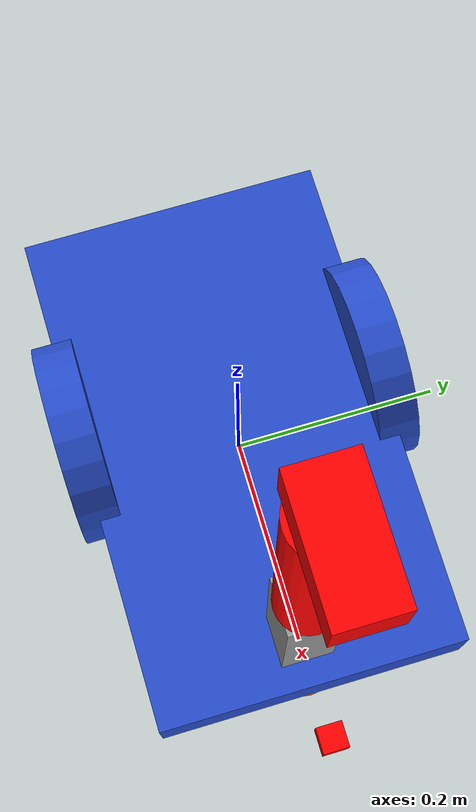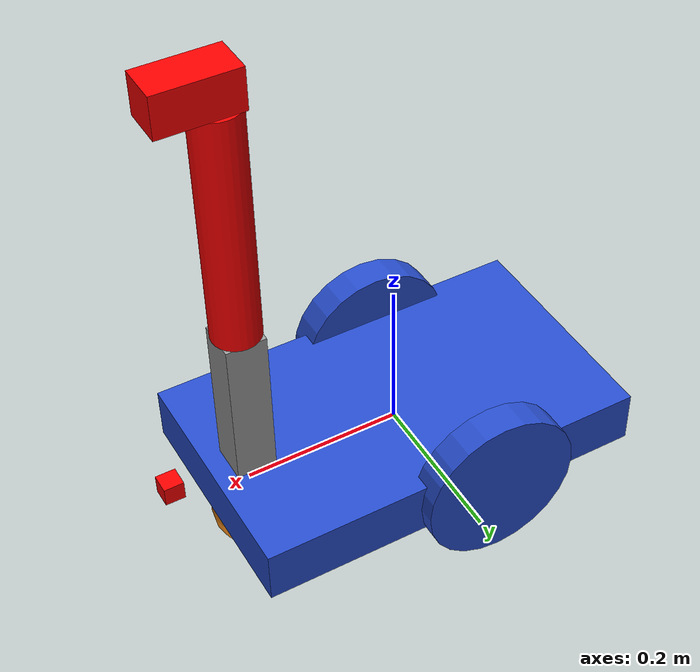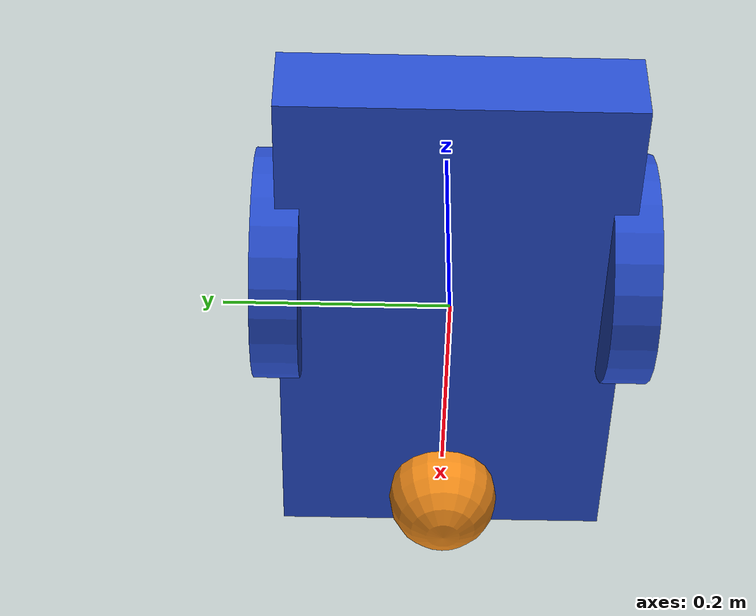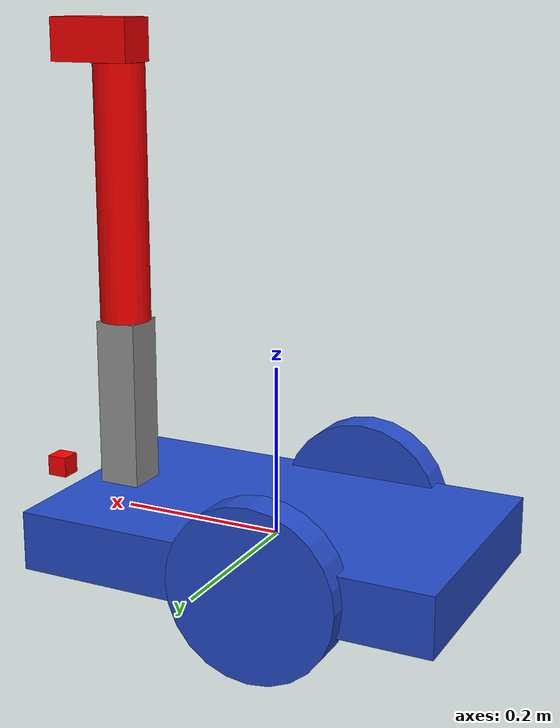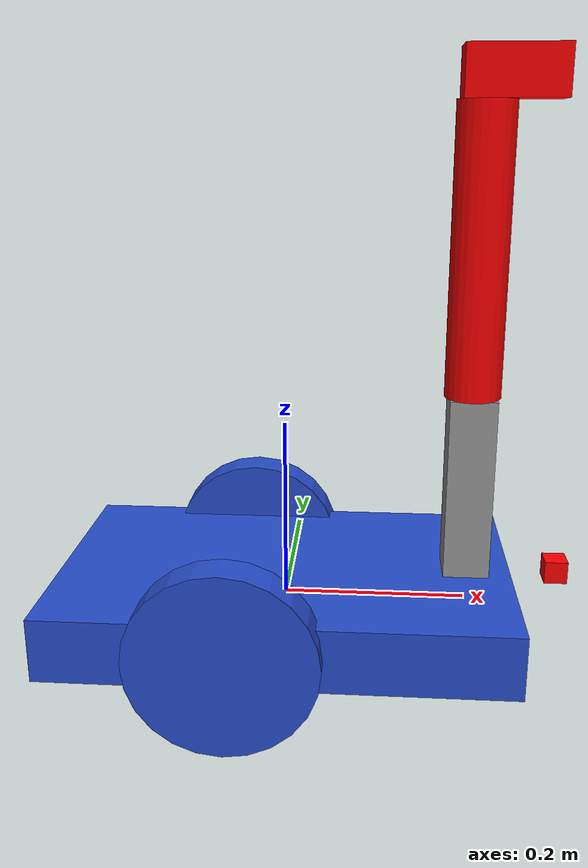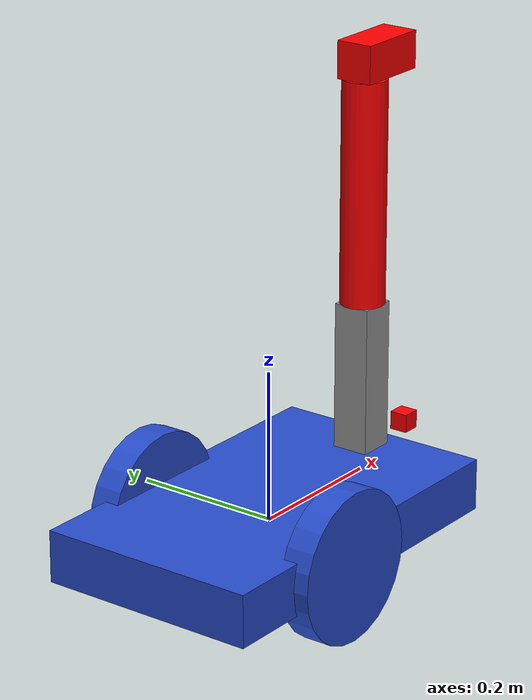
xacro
<?xml version="1.0" ?>
<robot name="ex3" xmlns:xacro="https://www.ros.org/wiki/xacro" >

 <!-- xacro:include filename="$(find robot1_description)/urdf/materials.xacro" /-->
 <xacro:include filename="$(find exp_assignment3)/urdf/ex3_arm.gazebo" />

 <xacro:macro name="cylinder_inertia" params="mass r l">
    <inertia ixx="${mass*(3*r*r+l*l)/12}" ixy = "0" ixz = "0"
                iyy="${mass*(3*r*r+l*l)/12}" iyz = "0" izz="${mass*(r*r)/2}" />
 </xacro:macro>

    <xacro:macro name="link_wheel" params="name">
        <link name="${name}">
            <inertial>
              <mass value="0.2"/>
              <origin rpy="0 1.5707 1.5707" xyz="0 0 0"/>
              <inertia ixx="0.000526666666667" ixy="0" ixz="0" iyy="0.000526666666667" iyz="0" izz="0.001"/>
            </inertial>
            <collision name="link_right_wheel_collision">
              <origin rpy="0 1.5707 1.5707" xyz="0 0 0"/>
              <geometry>
                <cylinder length="0.04" radius="0.1"/>
              </geometry>
            </collision>
            <visual name="${name}_visual">
              <origin rpy="0 1.5707 1.5707" xyz="0 0 0"/>
              <geometry>
                <cylinder length="0.04" radius="0.1"/>
              </geometry>
            </visual>
        </link>
    </xacro:macro>

    <xacro:macro name="joint_wheel" params="name child origin_xyz">
      <joint name="${name}" type="continuous">
        <origin rpy="0 0 0" xyz="${origin_xyz}"/>
        <child link="${child}"/>
        <parent link="base_link"/>
        <axis rpy="0 0 0" xyz="0 1 0"/>
        <limit effort="10000" velocity="1000"/>
        <joint_properties damping="1.0" friction="1.0"/>
      </joint>
    </xacro:macro>

  <link name="base_link">
    <!-- pose and inertial -->
    <pose>0 0 0.1 0 0 0</pose>

    <inertial>
      <mass value="5"/>
      <origin rpy="0 0 0" xyz="0 0 0.1"/>
      <inertia ixx="0.0395416666667" ixy="0" ixz="0" iyy="0.106208333333" iyz="0" izz="0.106208333333"/>
    </inertial>

    <collision name="collision_chassis">
      <geometry>
        <box size="0.5 0.3 0.07"/>
      </geometry>
    </collision>

    <visual>
      <origin rpy="0 0 0" xyz="0 0 0"/>
      <geometry>
        <box size="0.5 0.3 0.07"/>
      </geometry>
      <material name="blue"/>
    </visual>

    <!-- caster front -->
    <collision name="caster_front_collision">
      <origin rpy=" 0 0 0" xyz="0.35 0 -0.05"/>
      <geometry>
        <sphere radius="0.05"/>
      </geometry>
      <surface>
        <friction>
          <ode>
            <mu>0</mu>
            <mu2>0</mu2>
            <slip1>1.0</slip1>
            <slip2>1.0</slip2>
          </ode>
        </friction>
      </surface>
    </collision>
    <visual name="caster_front_visual">
      <origin rpy=" 0 0 0" xyz="0.2 0 -0.05"/>
      <geometry>
        <sphere radius="0.05"/>
      </geometry>
    </visual>
    </link>

  <!-- Create wheels -->

  <xacro:link_wheel name="link_right_wheel" />
  <xacro:link_wheel name="link_left_wheel" />
  <xacro:joint_wheel name="joint_right_wheel"  child="link_right_wheel"  origin_xyz="-0.05 0.15 0"  />
  <xacro:joint_wheel name="joint_left_wheel"   child="link_left_wheel"   origin_xyz="-0.05 -0.15 0"  />

  <!--arm definition -->

  <link name="arm_base_link">
  	<inertial>
  		<mass value="0.5"/>
  		<origin xyz="0 0 0" rpy="0 0 0" />
  		<inertia ixx="0.0000416666667" ixy="0" ixz="0" iyy="0.0000416666667" iyz="0" izz="0.0000416666667"/>
  	</inertial>
  	<collision>
  	  <origin xyz="0 0 0" rpy="0 0 0"/>
      <geometry>
        <box size="0.05 0.05 0.2"/>
      </geometry>
  	</collision>
  	<visual>
  	  <origin xyz="0 0 0" rpy="0 0 0"/>
      <geometry>
        <box size="0.05 0.05 0.2"/>
      </geometry>
      <material name="grey" />
  	</visual>
  </link>

  <joint name="arm_base_to_base" type="fixed">
  	<origin rpy="0 0 0" xyz="0.2 0 0.135"/>
  	<parent link="base_link"/>
  	<child link="arm_base_link"/>
  </joint>

  <link name="arm_link_01">
  	<inertial>
  		<mass value="0.025"/>
  		<origin xyz="0 0 0" rpy="0 0 0" />
  		<inertia ixx="0.000010279" ixy="0" ixz="0" iyy="0.000010279" iyz="0" izz="0.000007225"/>
  	</inertial>
  	<collision>
  	  <origin xyz="0 0 0" rpy="0 0 0"/>
      <geometry>
        <cylinder radius="0.03" length="0.3"/>
      </geometry>
  	</collision>
  	<visual>
  	  <origin xyz="0 0 0" rpy="0 0 0"/>
      <geometry>
        <cylinder radius="0.03" length="0.3"/>
      </geometry>
      <material name="red" />
  	</visual>
  </link>

  <joint name="arm_joint_01" type="fixed">
  	<axis xyz="0 0 1"/>
  	<origin rpy="0 0 0" xyz="0 0 0.25"/>
  	<parent link="arm_base_link"/>
  	<child link="arm_link_01"/>
  </joint>

  <!-- Camera Link-->
  <link name="camera_link">
   	<collision>
      <origin xyz="0.0 0 0" rpy="0 0 0"/>
      <geometry>
	<box size="0.1 0.05 0.05"/>
      </geometry>
    </collision>
    <visual>
      <origin xyz="0.0 0 0" rpy="0 0 0"/>
      <geometry>
	<box size="0.1 0.05 0.05"/>
      </geometry>
      <material name="white">
	<color rgba="1 0 0 1"/>
      </material>
    </visual>
    <inertial>
      <mass value="1e-5" />
      <origin xyz="0.0 0 0" rpy="0 0 0"/>
      <inertia ixx="1e-6" ixy="0" ixz="0" iyy="1e-6" iyz="0" izz="1e-6" />
    </inertial>
  </link>

  <joint name="camera_joint" type="fixed">
    <axis xyz="0 1 0" />
    <origin xyz="0.025 0 0.175" rpy="0 0 0"/>
    <parent link="arm_link_01"/>
    <child link="camera_link"/>
  </joint>

  <link name="hokuyo_link">
	    <collision>
	      <origin xyz="0 0 0.00125" rpy="0 0 0"/>
	      <geometry>
		<box size="0.025 0.025 0.025"/>
	      </geometry>
	    </collision>
	    <visual>
	      <origin xyz="0 0 0.0125" rpy="0 0 0"/>
	      <geometry>
		<box size="0.025 0.025 0.025"/>
	      </geometry>
	      <material name="red">
		<color rgba="1 0 0 1"/>
	      </material>
	    </visual>
	    <inertial>
	      <mass value="1e-5" />
	      <origin xyz="0 0 0" rpy="0 0 0"/>
	      <inertia ixx="1e-6" ixy="0" ixz="0" iyy="1e-6" iyz="0" izz="1e-6" />
	    </inertial>
  </link>

  <joint name="hokuyo_joint" type="fixed">
	    <axis xyz="0 1 0" />
	    <origin xyz="0.3 0 0.025" rpy="0 0 0"/>
	    <parent link="base_link"/>
	    <child link="hokuyo_link"/>
	 </joint>

  </robot>
